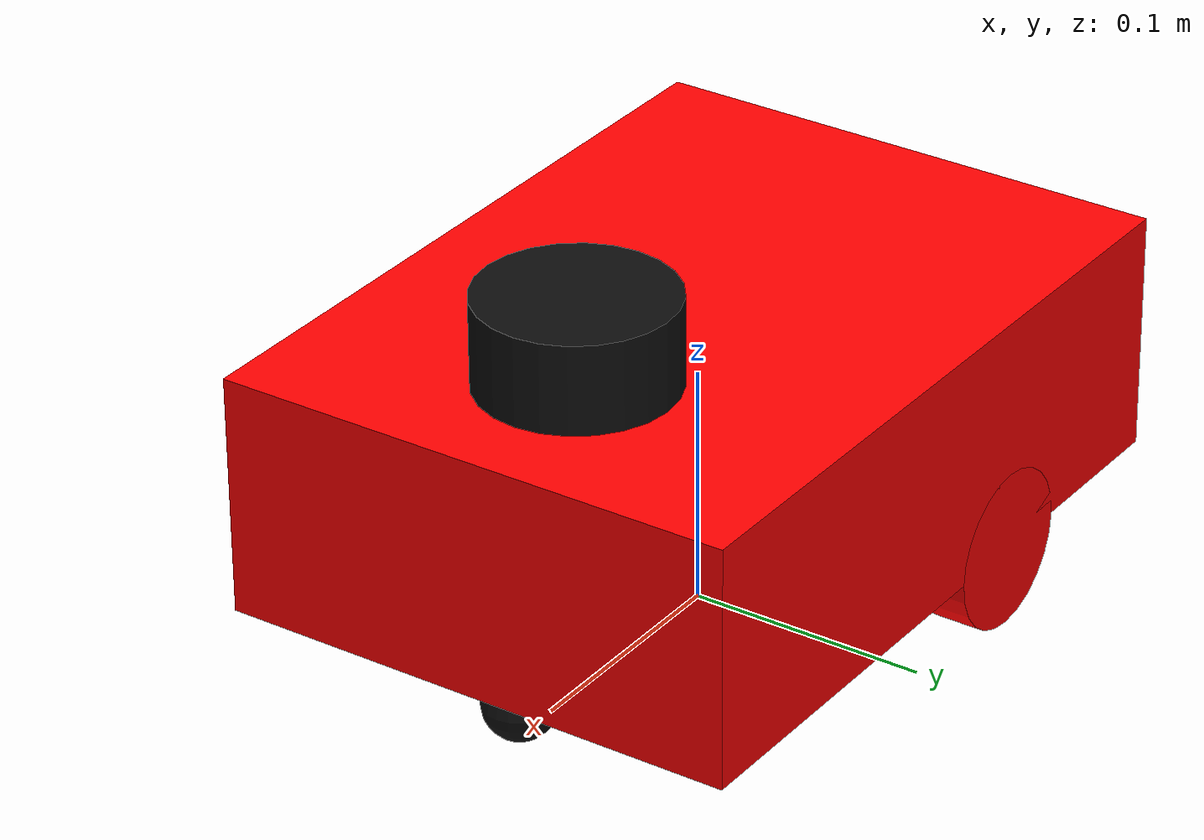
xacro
<?xml version="1.0"?>

<robot xmlns:xacro="http://www.ros.org/wiki/xacro"
       name="myrobot">
    <xacro:include filename="../sensors/lidar.xacro"/>
    <!-- Robot dimensions -->

    <xacro:property name="body_length" value="0.30"/>
    <xacro:property name="body_width"  value="0.22"/>
    <xacro:property name="body_height" value="0.10"/>

    <xacro:property name="wheel_radius" value="0.033"/>
    <xacro:property name="wheel_width"  value="0.020"/>
    <xacro:property name="wheel_separation" value="0.20"/>

    <!-- Base -->

    <link name="base_link">

        <visual>
            <origin
                xyz="0 0 ${wheel_radius + body_height/2}"
                rpy="0 0 0"/>

            <geometry>
                <box size="${body_length} ${body_width} ${body_height}"/>
            </geometry>

            <material name="red">
                <color rgba="1 0 0 1"/>
            </material>
        </visual>

        <collision>
            <origin
                xyz="0 0 ${wheel_radius + body_height/2}"
                rpy="0 0 0"/>
            <geometry>
                <box size="${body_length} ${body_width} ${body_height}"/>
            </geometry>
        </collision>

        <inertial>
            <origin
                xyz="0 0 ${wheel_radius + body_height/2}"
                rpy="0 0 0"/>
            <mass value="1.0"/>

            <inertia
                ixx="0.01"
                ixy="0.0"
                ixz="0.0"
                iyy="0.01"
                iyz="0.0"
                izz="0.01"/>
        </inertial>

    </link>

    <!-- Gazebo-specific appearance -->
    <gazebo reference="base_link">
        <visual>
            <material>
                <ambient>1 0 0 1</ambient>
                <diffuse>1 0 0 1</diffuse>
                <specular>1 0 0 1</specular>
            </material>
        </visual>
    </gazebo>

    <!-- Left wheel -->

    <link name="left_wheel">
        <visual>
            <geometry>
                <cylinder
                    radius="${wheel_radius}"
                    length="${wheel_width}"/>
            </geometry>

            <origin
                xyz="0 0 0"
                rpy="${pi/2} 0 0"/>
            <material name="wheel_red">
                <color rgba="1.0 0.0 0.0 1.0"/>
            </material>

        </visual>

        <collision>
            <geometry>
                <cylinder
                    radius="${wheel_radius}"
                    length="${wheel_width}"/>
            </geometry>

            <origin
                xyz="0 0 0"
                rpy="${pi/2} 0 0"/>
        </collision>

        <inertial>
            <mass value="0.1"/>

            <inertia
                ixx="0.0001"
                ixy="0.0"
                ixz="0.0"
                iyy="0.0001"
                iyz="0.0"
                izz="0.0001"/>
        </inertial>

    </link>
    <gazebo reference="left_wheel">
        <visual>
            <material>
                <ambient>0.05 0.05 0.05 1</ambient>
                <diffuse>0.05 0.05 0.05 1</diffuse>
                <specular>0.05 0.05 0.05 1</specular>
            </material>
        </visual>
    </gazebo>

    <!-- Right wheel -->

    <link name="right_wheel">

        <visual>
            <geometry>
                <cylinder
                    radius="${wheel_radius}"
                    length="${wheel_width}"/>
            </geometry>

            <origin
                xyz="0 0 0"
                rpy="${pi/2} 0 0"/>

            <material name="wheel_red">
                <color rgba="1.0 0.0 0.0 1.0"/>
            </material>

        </visual>

        <collision>
            <geometry>
                <cylinder
                    radius="${wheel_radius}"
                    length="${wheel_width}"/>
            </geometry>

            <origin
                xyz="0 0 0"
                rpy="${pi/2} 0 0"/>
        </collision>

        <inertial>
            <mass value="0.1"/>

            <inertia
                ixx="0.0001"
                ixy="0.0"
                ixz="0.0"
                iyy="0.0001"
                iyz="0.0"
                izz="0.0001"/>
        </inertial>

    </link>
    <gazebo reference="right_wheel">
        <visual>
            <material>
                <ambient>0.05 0.05 0.05 1</ambient>
                <diffuse>0.05 0.05 0.05 1</diffuse>
                <specular>0.05 0.05 0.05 1</specular>
            </material>
        </visual>
    </gazebo>

<!-- Front caster -->

<link name="caster_wheel">

    <visual>
        <geometry>
            <sphere radius="0.015"/>
        </geometry>

        <material name="caster_black">
            <color rgba="0.05 0.05 0.05 1"/>
        </material>
    </visual>

    <collision>
        <geometry>
            <sphere radius="0.015"/>
        </geometry>
    </collision>

    <inertial>
        <mass value="0.05"/>

        <inertia
            ixx="0.00001"
            ixy="0.0"
            ixz="0.0"
            iyy="0.00001"
            iyz="0.0"
            izz="0.00001"/>
    </inertial>

</link>

    <!-- Left wheel joint -->

    <joint name="left_wheel_joint" type="continuous">

        <parent link="base_link"/>
        <child link="left_wheel"/>

        <origin
            xyz="-0.05 ${wheel_separation/2} ${wheel_radius}"
            rpy="0 0 0"/>

        <axis xyz="0 1 0"/>

    </joint>

    <!-- Right wheel joint -->

    <joint name="right_wheel_joint" type="continuous">

        <parent link="base_link"/>
        <child link="right_wheel"/>

        <origin
            xyz="-0.05 ${-wheel_separation/2} ${wheel_radius}"
            rpy="0 0 0"/>

        <axis xyz="0 1 0"/>

    </joint>

    <!-- CASTOR WHEEL joint -->
    <joint name="caster_joint" type="fixed">
        <parent link="base_link"/>
        <child link="caster_wheel"/>

        <origin
            xyz="${body_length/2 - 0.03} 0 0.015"
            rpy="0 0 0"/>
    </joint>

    <!-- ros2_control -->

    <ros2_control name="GazeboSimSystem" type="system">

        <hardware>
            <plugin>gz_ros2_control/GazeboSimSystem</plugin>
        </hardware>

        <!-- Left TT motor -->
        <joint name="left_wheel_joint">

            <command_interface name="velocity"/>

            <state_interface name="position"/>
            <state_interface name="velocity"/>

        </joint>

        <!-- Right TT motor -->
        <joint name="right_wheel_joint">

            <command_interface name="velocity"/>

            <state_interface name="position"/>
            <state_interface name="velocity"/>

        </joint>

    </ros2_control>

    <!-- Gazebo ros2_control plugin -->

    <gazebo>

        <plugin
            filename="libgz_ros2_control-system.so"
            name="gz_ros2_control::GazeboSimROS2ControlPlugin">

            <parameters>
                $(find myrobot_gazebo)/config/controllers.yaml
            </parameters>

        </plugin>

    </gazebo>

</robot>

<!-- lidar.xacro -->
<robot xmlns:xacro="http://www.ros.org/wiki/xacro">

  <!-- LiDAR mount -->
  <joint name="lidar_joint" type="fixed">
    <parent link="base_link"/>
    <child link="laser_frame"/>
    <origin xyz="0.08 0 0.15" rpy="0 0 0"/>
  </joint>

  <!-- LiDAR body -->
  <link name="laser_frame">

    <visual>
      <geometry>
        <cylinder radius="0.04" length="0.04"/>
      </geometry>
      <material name="lidar_black">
        <color rgba="0.05 0.05 0.05 1.0"/>
      </material>
    </visual>

    <collision>
      <geometry>
        <cylinder radius="0.04" length="0.04"/>
      </geometry>
    </collision>

    <inertial>
      <origin xyz="0 0 0" rpy="0 0 0"/>
      <mass value="0.05"/>
      <inertia
        ixx="0.00002"
        ixy="0"
        ixz="0"
        iyy="0.00002"
        iyz="0"
        izz="0.00002"/>
    </inertial>

  </link>

  <!-- Gazebo Sim LiDAR -->
  <gazebo reference="laser_frame">

    <sensor name="lidar" type="gpu_lidar">
      <pose>0 0 0 0 0 0</pose>

      <topic>/scan</topic>
      <update_rate>10</update_rate>
      <always_on>true</always_on>
      <visualize>true</visualize>

      <lidar>
        <scan>
          <horizontal>
            <samples>360</samples>
            <resolution>1</resolution>
            <min_angle>-3.14159</min_angle>
            <max_angle>3.14159</max_angle>
          </horizontal>
        </scan>

        <range>
          <min>0.03</min>
          <max>8.0</max>
          <resolution>0.01</resolution>
        </range>
      </lidar>

    </sensor>

  </gazebo>

</robot>
